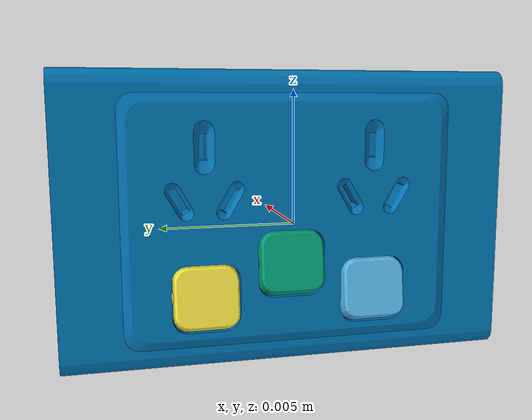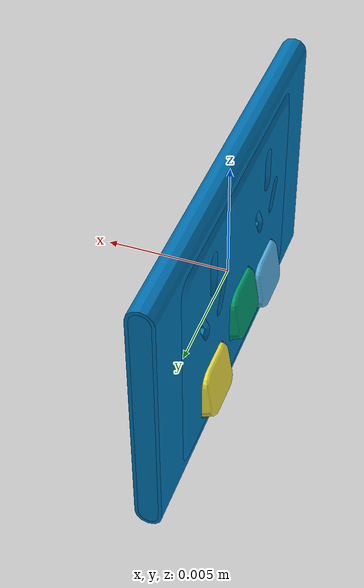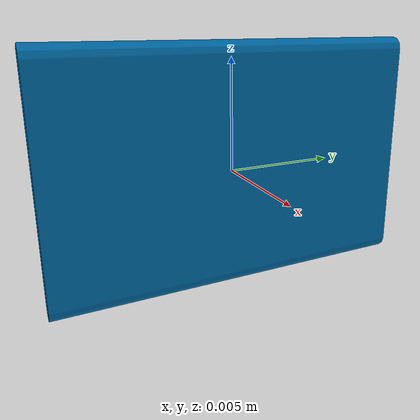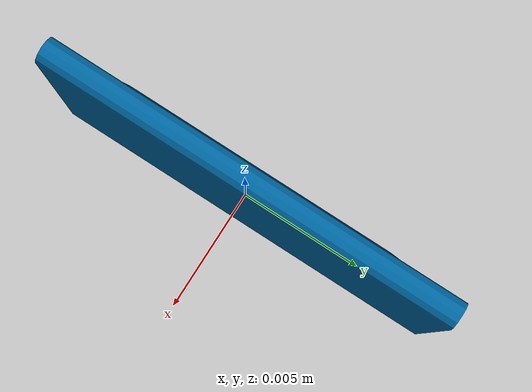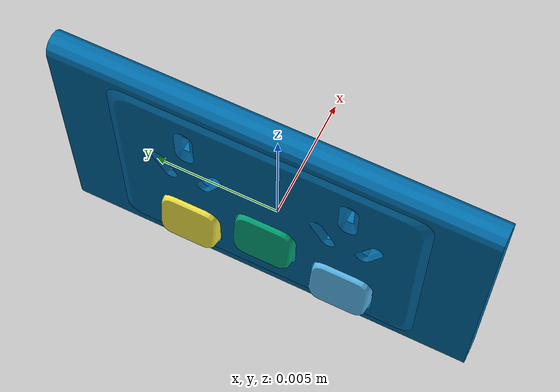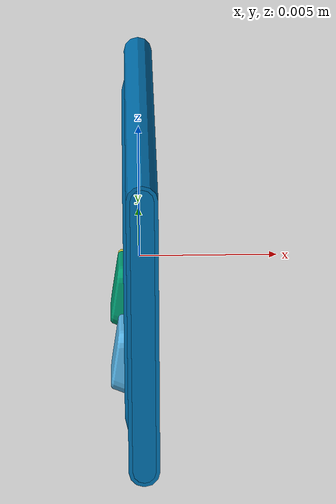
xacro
<robot name="partnet_390fbd96-e7e2-45db-a02f-cd08aa60821a" xmlns:xacro="http://wiki.ros.org/xacro">
	<xacro:property name="scale" value="100" /><link name="base" />
	<link name="link_0">
		<visual name="switch-1">
			<origin xyz="${0 / scale} ${0.2560395133358261 / scale} ${-0.02852507842140862 / scale}" />
			<geometry>
				<mesh filename="package://switch_description/urdf/100888/textured_objs/original-15.obj" scale="${1 / scale} ${1 / scale} ${1 / scale}" />
			</geometry>
		</visual>
		<collision>
			<origin xyz="${0 / scale} ${0.2560395133358261 / scale} ${-0.02852507842140862 / scale}" />
			<geometry>
				<mesh filename="package://switch_description/urdf/100888/textured_objs/original-15.obj" scale="${1 / scale} ${1 / scale} ${1 / scale}" />
			</geometry>
		</collision>
	</link>
	<joint name="joint_0" type="revolute">
		<origin xyz="${0 / scale} ${-0.2560395133358261 / scale} ${0.02852507842140862 / scale}" />
		<axis xyz="1 0 0" />
		<child link="link_0" />
		<parent link="link_3" />
		<limit lower="0.0" upper="0.3392920065876977" effort="10.0" velocity="0.1" />
	</joint>
	<link name="link_1">
		<visual name="switch-2">
			<origin xyz="${0 / scale} ${0.1384525016222508 / scale} ${-0.0285251540865028 / scale}" />
			<geometry>
				<mesh filename="package://switch_description/urdf/100888/textured_objs/original-18.obj" scale="${1 / scale} ${1 / scale} ${1 / scale}" />
			</geometry>
		</visual>
		<collision>
			<origin xyz="${0 / scale} ${0.1384525016222508 / scale} ${-0.0285251540865028 / scale}" />
			<geometry>
				<mesh filename="package://switch_description/urdf/100888/textured_objs/original-18.obj" scale="${1 / scale} ${1 / scale} ${1 / scale}" />
			</geometry>
		</collision>
	</link>
	<joint name="joint_1" type="revolute">
		<origin xyz="${0 / scale} ${-0.1384525016222508 / scale} ${0.0285251540865028 / scale}" />
		<axis xyz="1 0 0" />
		<child link="link_1" />
		<parent link="link_3" />
		<limit lower="0.0" upper="0.3392920065876977" effort="10.0" velocity="0.1" />
	</joint>
	<link name="link_2">
		<visual name="switch-3">
			<origin xyz="${0 / scale} ${0.2560395133358261 / scale} ${-0.02852507842140862 / scale}" />
			<geometry>
				<mesh filename="package://switch_description/urdf/100888/textured_objs/original-21.obj" scale="${1 / scale} ${1 / scale} ${1 / scale}" />
			</geometry>
		</visual>
		<collision>
			<origin xyz="${0 / scale} ${0.2560395133358261 / scale} ${-0.02852507842140862 / scale}" />
			<geometry>
				<mesh filename="package://switch_description/urdf/100888/textured_objs/original-21.obj" scale="${1 / scale} ${1 / scale} ${1 / scale}" />
			</geometry>
		</collision>
	</link>
	<joint name="joint_2" type="revolute">
		<origin xyz="${0 / scale} ${-0.2560395133358261 / scale} ${0.02852507842140862 / scale}" />
		<axis xyz="1 0 0" />
		<child link="link_2" />
		<parent link="link_3" />
		<limit lower="0.0" upper="0.3392920065876977" effort="10.0" velocity="0.1" />
	</joint>
	<link name="link_3">
		<visual name="base_body-4">
			<origin xyz="${0 / scale} ${0 / scale} ${0 / scale}" />
			<geometry>
				<mesh filename="package://switch_description/urdf/100888/textured_objs/original-22.obj" scale="${1 / scale} ${1 / scale} ${1 / scale}" />
			</geometry>
		</visual>
		<visual name="base_body-4">
			<origin xyz="${0 / scale} ${0 / scale} ${0 / scale}" />
			<geometry>
				<mesh filename="package://switch_description/urdf/100888/textured_objs/original-4.obj" scale="${1 / scale} ${1 / scale} ${1 / scale}" />
			</geometry>
		</visual>
		<visual name="base_body-4">
			<origin xyz="${0 / scale} ${0 / scale} ${0 / scale}" />
			<geometry>
				<mesh filename="package://switch_description/urdf/100888/textured_objs/original-3.obj" scale="${1 / scale} ${1 / scale} ${1 / scale}" />
			</geometry>
		</visual>
		<visual name="base_body-4">
			<origin xyz="${0 / scale} ${0 / scale} ${0 / scale}" />
			<geometry>
				<mesh filename="package://switch_description/urdf/100888/textured_objs/original-2.obj" scale="${1 / scale} ${1 / scale} ${1 / scale}" />
			</geometry>
		</visual>
		<visual name="base_body-4">
			<origin xyz="${0 / scale} ${0 / scale} ${0 / scale}" />
			<geometry>
				<mesh filename="package://switch_description/urdf/100888/textured_objs/original-16.obj" scale="${1 / scale} ${1 / scale} ${1 / scale}" />
			</geometry>
		</visual>
		<visual name="base_body-4">
			<origin xyz="${0 / scale} ${0 / scale} ${0 / scale}" />
			<geometry>
				<mesh filename="package://switch_description/urdf/100888/textured_objs/original-8.obj" scale="${1 / scale} ${1 / scale} ${1 / scale}" />
			</geometry>
		</visual>
		<visual name="base_body-4">
			<origin xyz="${0 / scale} ${0 / scale} ${0 / scale}" />
			<geometry>
				<mesh filename="package://switch_description/urdf/100888/textured_objs/original-13.obj" scale="${1 / scale} ${1 / scale} ${1 / scale}" />
			</geometry>
		</visual>
		<visual name="base_body-4">
			<origin xyz="${0 / scale} ${0 / scale} ${0 / scale}" />
			<geometry>
				<mesh filename="package://switch_description/urdf/100888/textured_objs/original-9.obj" scale="${1 / scale} ${1 / scale} ${1 / scale}" />
			</geometry>
		</visual>
		<visual name="base_body-4">
			<origin xyz="${0 / scale} ${0 / scale} ${0 / scale}" />
			<geometry>
				<mesh filename="package://switch_description/urdf/100888/textured_objs/original-5.obj" scale="${1 / scale} ${1 / scale} ${1 / scale}" />
			</geometry>
		</visual>
		<visual name="base_body-4">
			<origin xyz="${0 / scale} ${0 / scale} ${0 / scale}" />
			<geometry>
				<mesh filename="package://switch_description/urdf/100888/textured_objs/original-6.obj" scale="${1 / scale} ${1 / scale} ${1 / scale}" />
			</geometry>
		</visual>
		<visual name="base_body-4">
			<origin xyz="${0 / scale} ${0 / scale} ${0 / scale}" />
			<geometry>
				<mesh filename="package://switch_description/urdf/100888/textured_objs/original-11.obj" scale="${1 / scale} ${1 / scale} ${1 / scale}" />
			</geometry>
		</visual>
		<visual name="base_body-4">
			<origin xyz="${0 / scale} ${0 / scale} ${0 / scale}" />
			<geometry>
				<mesh filename="package://switch_description/urdf/100888/textured_objs/original-12.obj" scale="${1 / scale} ${1 / scale} ${1 / scale}" />
			</geometry>
		</visual>
		<visual name="base_body-4">
			<origin xyz="${0 / scale} ${0 / scale} ${0 / scale}" />
			<geometry>
				<mesh filename="package://switch_description/urdf/100888/textured_objs/original-7.obj" scale="${1 / scale} ${1 / scale} ${1 / scale}" />
			</geometry>
		</visual>
		<visual name="base_body-4">
			<origin xyz="${0 / scale} ${0 / scale} ${0 / scale}" />
			<geometry>
				<mesh filename="package://switch_description/urdf/100888/textured_objs/original-1.obj" scale="${1 / scale} ${1 / scale} ${1 / scale}" />
			</geometry>
		</visual>
		<visual name="base_body-4">
			<origin xyz="${0 / scale} ${0 / scale} ${0 / scale}" />
			<geometry>
				<mesh filename="package://switch_description/urdf/100888/textured_objs/original-10.obj" scale="${1 / scale} ${1 / scale} ${1 / scale}" />
			</geometry>
		</visual>
		<visual name="base_body-4">
			<origin xyz="${0 / scale} ${0 / scale} ${0 / scale}" />
			<geometry>
				<mesh filename="package://switch_description/urdf/100888/textured_objs/original-19.obj" scale="${1 / scale} ${1 / scale} ${1 / scale}" />
			</geometry>
		</visual>
		<collision>
			<origin xyz="${0 / scale} ${0 / scale} ${0 / scale}" />
			<geometry>
				<mesh filename="package://switch_description/urdf/100888/textured_objs/original-22.obj" scale="${1 / scale} ${1 / scale} ${1 / scale}" />
			</geometry>
		</collision>
		<collision>
			<origin xyz="${0 / scale} ${0 / scale} ${0 / scale}" />
			<geometry>
				<mesh filename="package://switch_description/urdf/100888/textured_objs/original-4.obj" scale="${1 / scale} ${1 / scale} ${1 / scale}" />
			</geometry>
		</collision>
		<collision>
			<origin xyz="${0 / scale} ${0 / scale} ${0 / scale}" />
			<geometry>
				<mesh filename="package://switch_description/urdf/100888/textured_objs/original-3.obj" scale="${1 / scale} ${1 / scale} ${1 / scale}" />
			</geometry>
		</collision>
		<collision>
			<origin xyz="${0 / scale} ${0 / scale} ${0 / scale}" />
			<geometry>
				<mesh filename="package://switch_description/urdf/100888/textured_objs/original-2.obj" scale="${1 / scale} ${1 / scale} ${1 / scale}" />
			</geometry>
		</collision>
		<collision>
			<origin xyz="${0 / scale} ${0 / scale} ${0 / scale}" />
			<geometry>
				<mesh filename="package://switch_description/urdf/100888/textured_objs/original-16.obj" scale="${1 / scale} ${1 / scale} ${1 / scale}" />
			</geometry>
		</collision>
		<collision>
			<origin xyz="${0 / scale} ${0 / scale} ${0 / scale}" />
			<geometry>
				<mesh filename="package://switch_description/urdf/100888/textured_objs/original-8.obj" scale="${1 / scale} ${1 / scale} ${1 / scale}" />
			</geometry>
		</collision>
		<collision>
			<origin xyz="${0 / scale} ${0 / scale} ${0 / scale}" />
			<geometry>
				<mesh filename="package://switch_description/urdf/100888/textured_objs/original-13.obj" scale="${1 / scale} ${1 / scale} ${1 / scale}" />
			</geometry>
		</collision>
		<collision>
			<origin xyz="${0 / scale} ${0 / scale} ${0 / scale}" />
			<geometry>
				<mesh filename="package://switch_description/urdf/100888/textured_objs/original-9.obj" scale="${1 / scale} ${1 / scale} ${1 / scale}" />
			</geometry>
		</collision>
		<collision>
			<origin xyz="${0 / scale} ${0 / scale} ${0 / scale}" />
			<geometry>
				<mesh filename="package://switch_description/urdf/100888/textured_objs/original-5.obj" scale="${1 / scale} ${1 / scale} ${1 / scale}" />
			</geometry>
		</collision>
		<collision>
			<origin xyz="${0 / scale} ${0 / scale} ${0 / scale}" />
			<geometry>
				<mesh filename="package://switch_description/urdf/100888/textured_objs/original-6.obj" scale="${1 / scale} ${1 / scale} ${1 / scale}" />
			</geometry>
		</collision>
		<collision>
			<origin xyz="${0 / scale} ${0 / scale} ${0 / scale}" />
			<geometry>
				<mesh filename="package://switch_description/urdf/100888/textured_objs/original-11.obj" scale="${1 / scale} ${1 / scale} ${1 / scale}" />
			</geometry>
		</collision>
		<collision>
			<origin xyz="${0 / scale} ${0 / scale} ${0 / scale}" />
			<geometry>
				<mesh filename="package://switch_description/urdf/100888/textured_objs/original-12.obj" scale="${1 / scale} ${1 / scale} ${1 / scale}" />
			</geometry>
		</collision>
		<collision>
			<origin xyz="${0 / scale} ${0 / scale} ${0 / scale}" />
			<geometry>
				<mesh filename="package://switch_description/urdf/100888/textured_objs/original-7.obj" scale="${1 / scale} ${1 / scale} ${1 / scale}" />
			</geometry>
		</collision>
		<collision>
			<origin xyz="${0 / scale} ${0 / scale} ${0 / scale}" />
			<geometry>
				<mesh filename="package://switch_description/urdf/100888/textured_objs/original-1.obj" scale="${1 / scale} ${1 / scale} ${1 / scale}" />
			</geometry>
		</collision>
		<collision>
			<origin xyz="${0 / scale} ${0 / scale} ${0 / scale}" />
			<geometry>
				<mesh filename="package://switch_description/urdf/100888/textured_objs/original-10.obj" scale="${1 / scale} ${1 / scale} ${1 / scale}" />
			</geometry>
		</collision>
		<collision>
			<origin xyz="${0 / scale} ${0 / scale} ${0 / scale}" />
			<geometry>
				<mesh filename="package://switch_description/urdf/100888/textured_objs/original-19.obj" scale="${1 / scale} ${1 / scale} ${1 / scale}" />
			</geometry>
		</collision>
	</link>
	<joint name="joint_3" type="fixed">
		<origin rpy="1.570796326794897 0 -1.570796326794897" xyz="${0 / scale} ${0 / scale} ${0 / scale}" />
		<child link="link_3" />
		<parent link="base" />
	</joint>
</robot>
